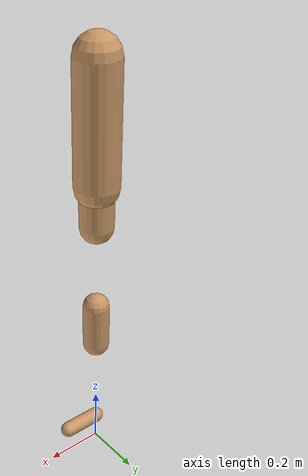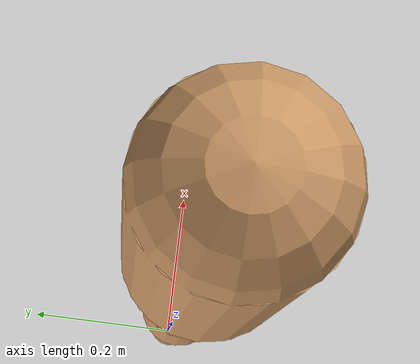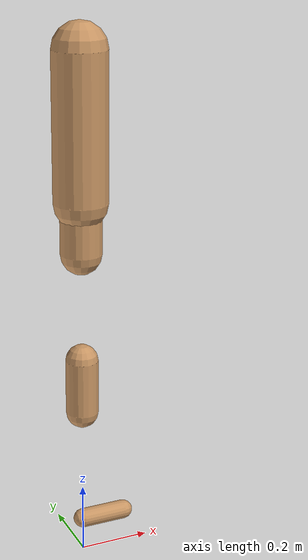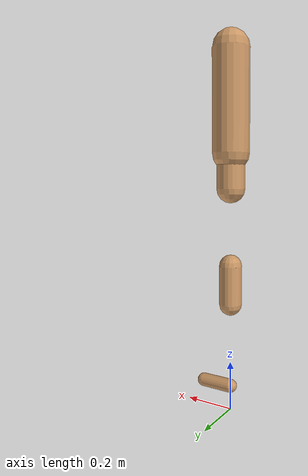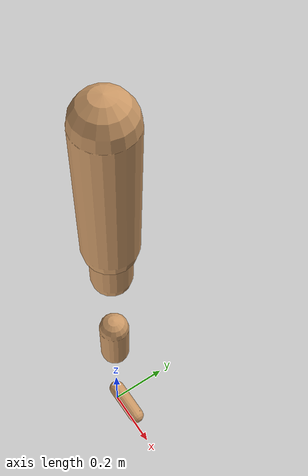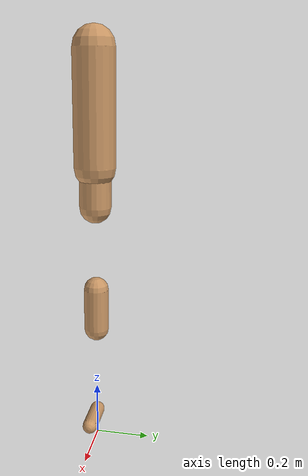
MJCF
<mujoco model="walker2d">
  <compiler angle="degree" coordinate="global" inertiafromgeom="true" />
  <default>
    <joint armature="0.01" damping=".1" limited="true" />
    <geom conaffinity="0" condim="3" contype="1" density="1000" friction="0.8 .1 .1" rgba="0.8 0.6 .4 1" />
  </default>
  <option integrator="RK4" timestep="0.002" />
  <worldbody>

    <body name="torso" pos="0 0 -0.6535589708623512">
      <joint armature="0" axis="1 0 0" damping="0" limited="false" name="ignorex" pos="0 0 0" stiffness="0" type="slide" />
      <joint armature="0" axis="0 0 1" damping="0" limited="false" name="ignorez" pos="0 0 0" ref="1.25" stiffness="0" type="slide" />
      <joint armature="0" axis="0 1 0" damping="0" limited="false" name="ignorey" pos="0 0 0" stiffness="0" type="hinge" />
      <geom fromto="0 0 1.45 0 0 1.05" name="torso_geom" size="0.07452893439718049" type="capsule" />
      <body name="thigh">
        <joint axis="0 -1 0" name="thigh_joint" pos="0 0 1.05" range="-150 0" type="hinge" />
        <geom fromto="0.0 0.0 1.05 0.0 0.0 0.9095805651453241" name="thigh_geom" size="0.057234735130124774" type="capsule" />
        <body name="leg" pos="0.0 0.0 0.30958056514532417">
          <joint axis="0 -1 0" name="leg_joint" pos="0 0 0.6" range="-150 0" type="hinge" />
          <geom fromto="0.0 0.0 0.6 0.0 0.0 0.44397840571702685" name="leg_geom" size="0.045787788104099815" type="capsule" />
          <body name="foot" pos="0.0 0.0 0.34397840571702687">
            <joint axis="0 -1 0" name="foot_joint" pos="0 0 0.1" range="-45 45" type="hinge" />
            <geom fromto="0.0 0.0 0.1 0.12648691213046137 0.0 0.1" name="foot_geom" size="0.027263580063236065" type="capsule" />
          </body>
        </body>
      </body>

      <body name="thigh_left">
        <joint axis="0 -1 0" name="thigh_left_joint" pos="0 0 1.05" range="-150 0" type="hinge" />
        <geom fromto="0.0 0.0 1.05 0.0 0.0 0.9095805651453241" name="thigh_left_geom" rgba=".7 .3 .6 1" size="0.057234735130124774" type="capsule" />
        <body name="leg_left" pos="0.0 0.0 0.30958056514532417">
          <joint axis="0 -1 0" name="leg_left_joint" pos="0 0 0.6" range="-150 0" type="hinge" />
          <geom fromto="0.0 0.0 0.6 0.0 0.0 0.44397840571702685" name="leg_left_geom" rgba=".7 .3 .6 1" size="0.045787788104099815" type="capsule" />
          <body name="foot_left" pos="0.0 0.0 0.34397840571702687">
            <joint axis="0 -1 0" name="foot_left_joint" pos="0 0 0.1" range="-45 45" type="hinge" />
            <geom fromto="0.0 0.0 0.1 0.12648691213046137 0.0 0.1" name="foot_left_geom" rgba=".7 .3 .6 1" size="0.027263580063236065" type="capsule" />
          </body>
        </body>
      </body>
    </body>
  </worldbody>
  <actuator>

    <motor ctrllimited="true" ctrlrange="-1.0 1.0" gear="100" joint="thigh_joint" />
    <motor ctrllimited="true" ctrlrange="-1.0 1.0" gear="100" joint="leg_joint" />
    <motor ctrllimited="true" ctrlrange="-1.0 1.0" gear="100" joint="foot_joint" />
    <motor ctrllimited="true" ctrlrange="-1.0 1.0" gear="100" joint="thigh_left_joint" />
    <motor ctrllimited="true" ctrlrange="-1.0 1.0" gear="100" joint="leg_left_joint" />
    <motor ctrllimited="true" ctrlrange="-1.0 1.0" gear="100" joint="foot_left_joint" />

  </actuator>
</mujoco>
